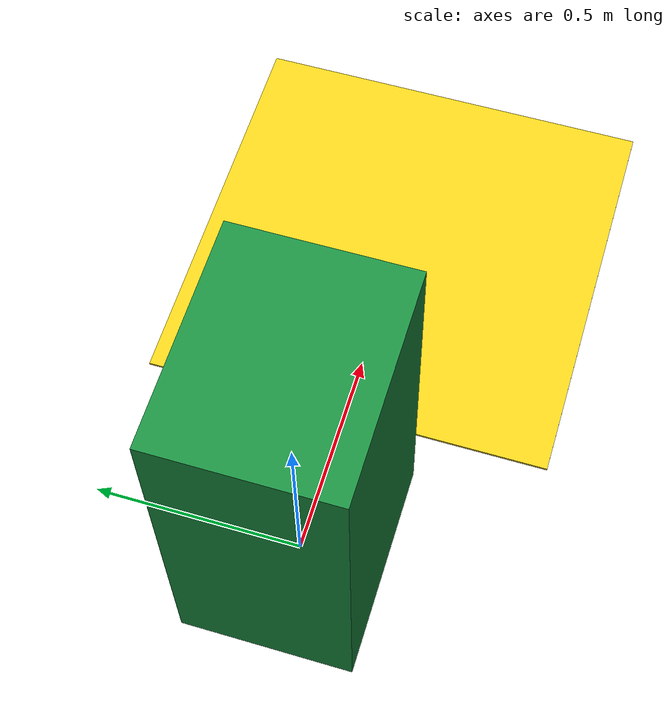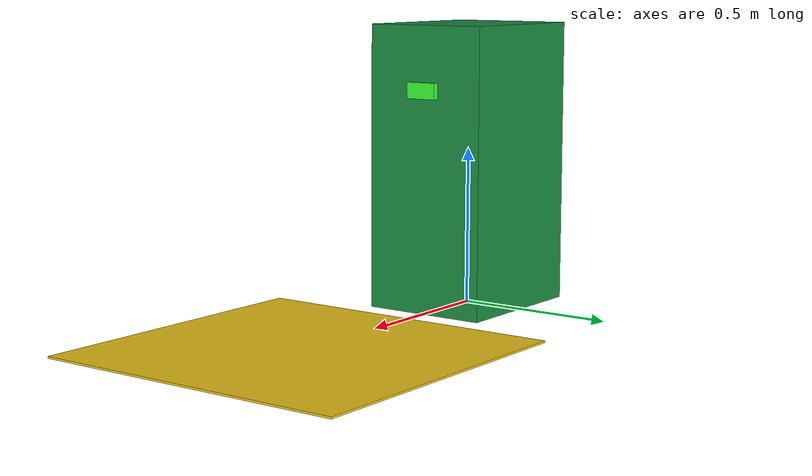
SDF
<?xml version="1.0" ?>
<!--
  충전 스테이션. 모델 원점 = 본체 바닥 중심, +x 가 로봇 진입 방향(패드 쪽).
  본체(녹색)는 충돌체를 가지고, 바닥 패드(노랑)는 도색 표시라 충돌체가 없다.
-->
<sdf version="1.8">
  <model name="charging_station">
    <static>true</static>
    <link name="link">
      <collision name="body_collision">
        <pose>0 0 0.45 0 0 0</pose>
        <geometry><box><size>0.5 0.4 0.9</size></box></geometry>
      </collision>
      <visual name="body">
        <pose>0 0 0.45 0 0 0</pose>
        <geometry><box><size>0.5 0.4 0.9</size></box></geometry>
        <material>
          <ambient>0.10 0.55 0.25 1</ambient>
          <diffuse>0.10 0.55 0.25 1</diffuse>
          <specular>0.2 0.2 0.2 1</specular>
        </material>
      </visual>
      <!-- 충전 접점 표시등 -->
      <visual name="indicator">
        <pose>0.26 0 0.70 0 0 0</pose>
        <geometry><box><size>0.02 0.10 0.05</size></box></geometry>
        <material>
          <ambient>0.2 1.0 0.2 1</ambient>
          <diffuse>0.2 1.0 0.2 1</diffuse>
          <emissive>0.1 0.6 0.1 1</emissive>
        </material>
      </visual>
      <!-- 로봇 정차 패드 (도색, 충돌 없음) -->
      <visual name="pad">
        <pose>0.85 0 0.003 0 0 0</pose>
        <geometry><box><size>1.0 1.0 0.006</size></box></geometry>
        <material>
          <ambient>0.95 0.80 0.10 1</ambient>
          <diffuse>0.95 0.80 0.10 1</diffuse>
        </material>
      </visual>
    </link>
  </model>
</sdf>
